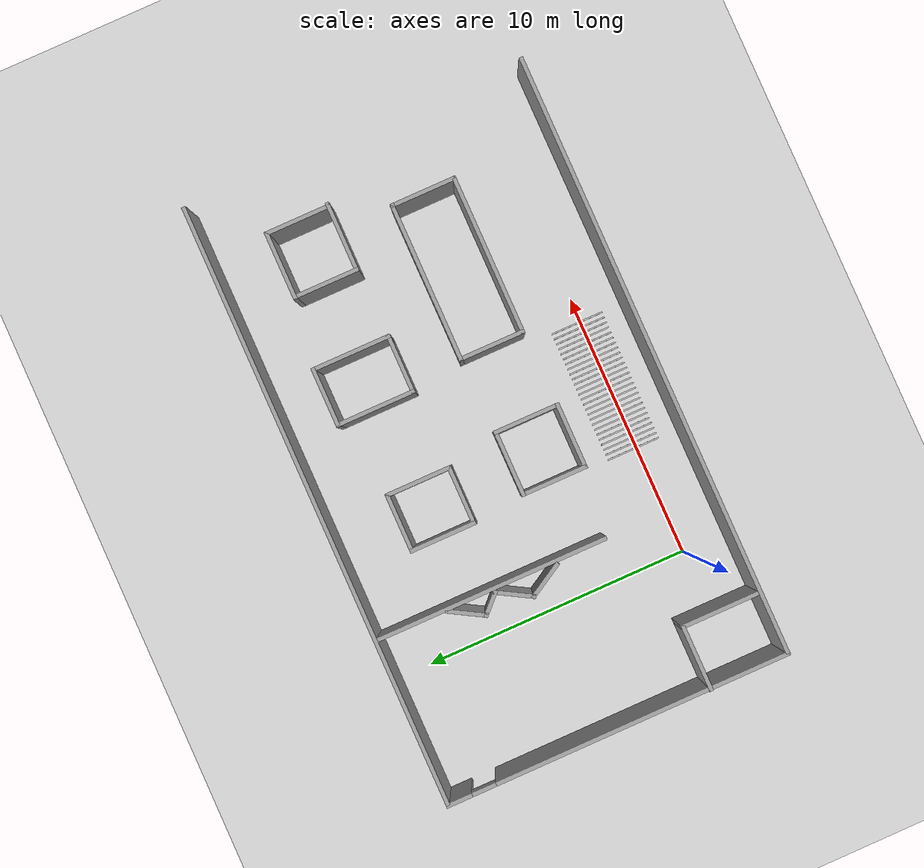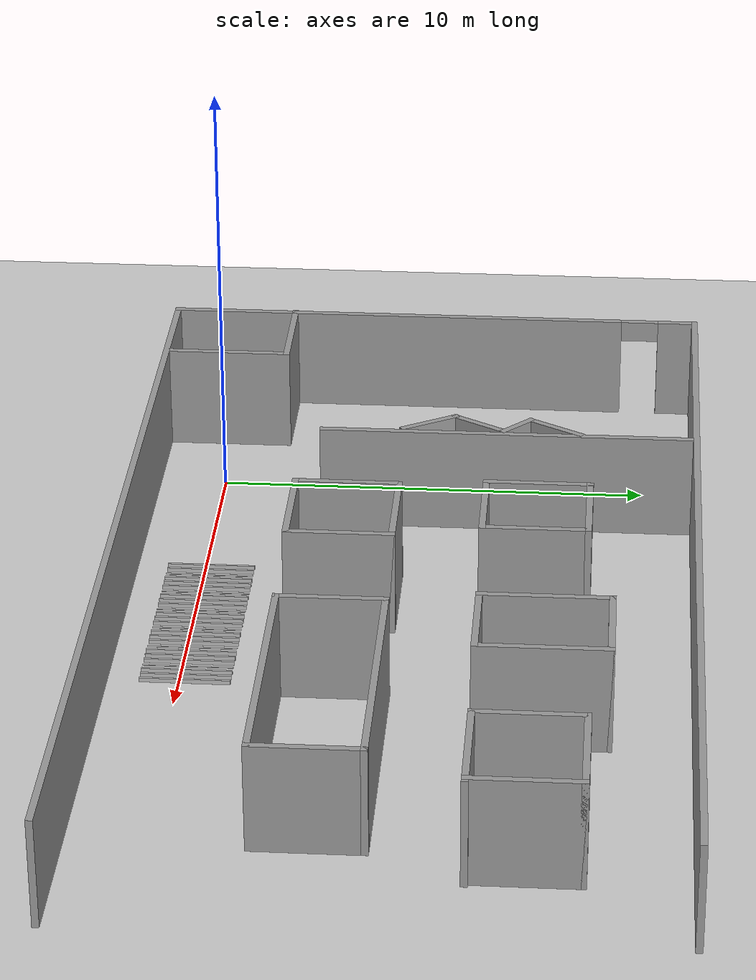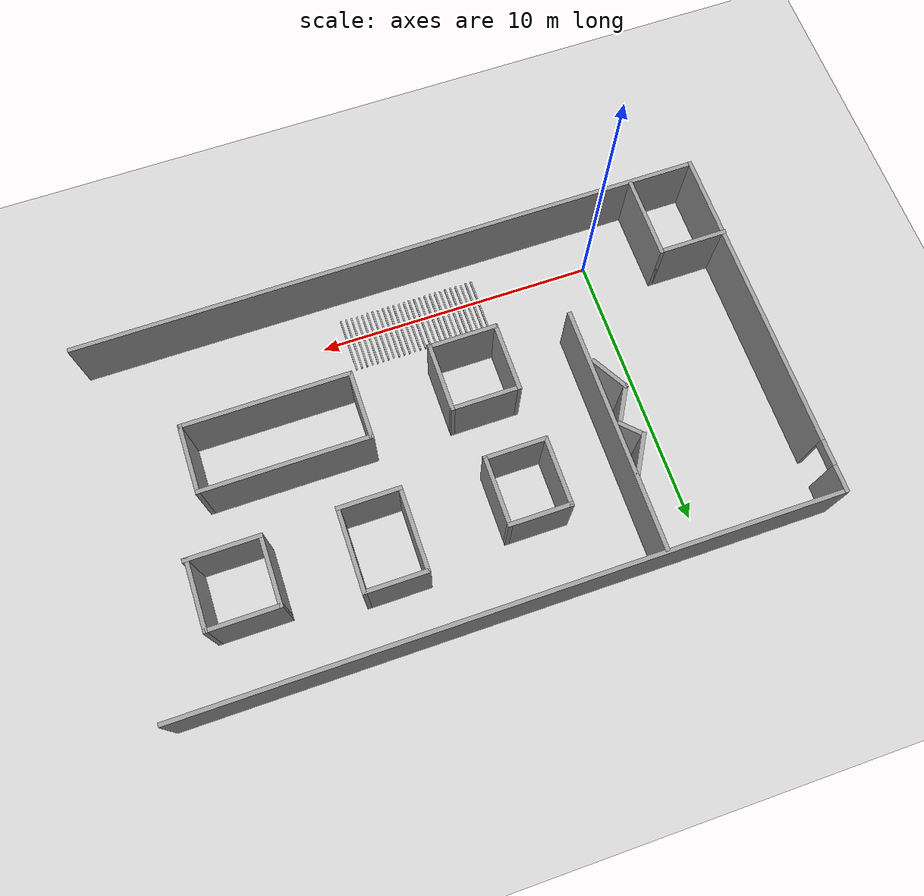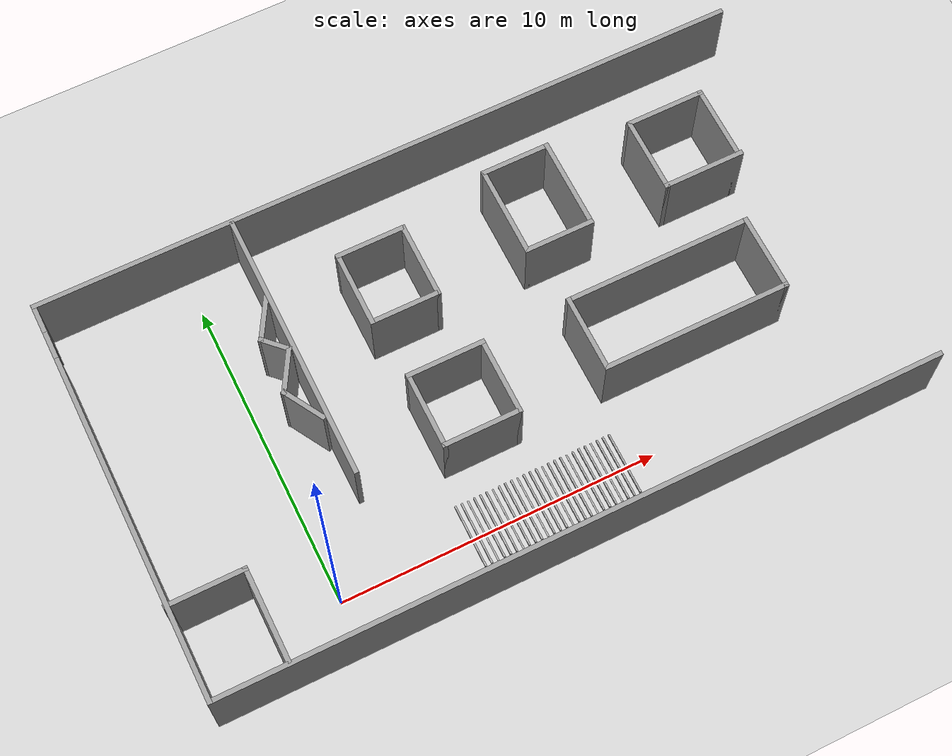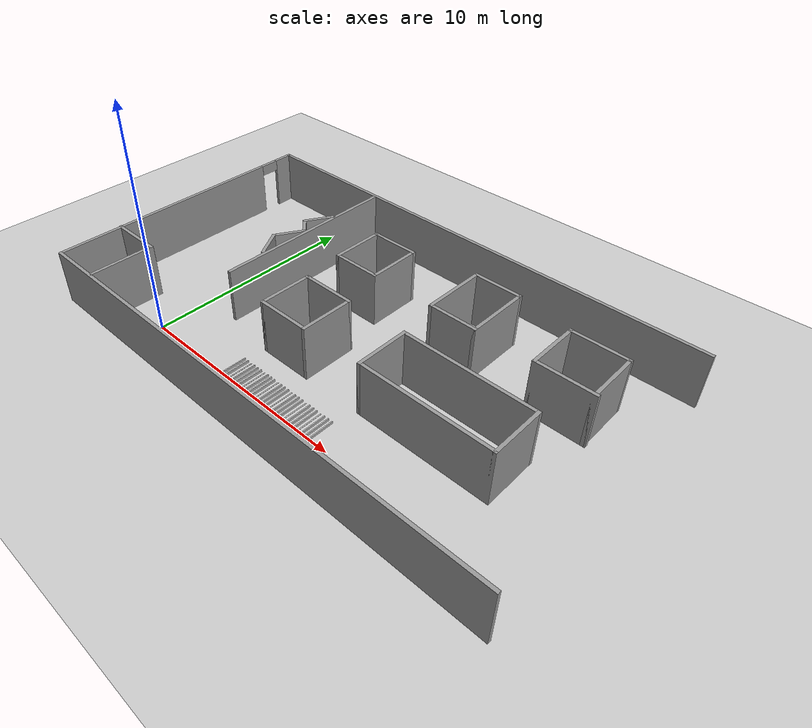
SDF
<sdf version="1.7">
 <world name="default">
  <model name="ground_plane">
   <static>1</static>
   <link name="link">
    <collision name="collision">
     <geometry><plane><normal>0 0 1</normal><size>100 100</size></plane></geometry>
     <surface>
      <contact><collide_bitmask>65535</collide_bitmask></contact>
      <friction><ode><mu>100</mu><mu2>50</mu2></ode></friction>
     </surface>
    </collision>
    <visual name="visual">
     <cast_shadows>0</cast_shadows>
     <geometry><plane><normal>0 0 1</normal><size>100 100</size></plane></geometry>
     <material>
      <script><uri>file://media/materials/scripts/gazebo.material</uri><name>Gazebo/Grey</name></script>
     </material>
    </visual>
   </link>
  </model>
  <model name="office.world">
   <pose>6.86394 4.7921 0 0 -0 0</pose>
   <link name="Wall_11">
    <collision name="Wall_11_Collision">
     <geometry><box><size>22.75 0.15 2.5</size></box></geometry>
     <pose>0 0 1.25 0 -0 0</pose>
    </collision>
    <visual name="Wall_11_Visual">
     <pose>0 0 1.25 0 -0 0</pose>
     <geometry><box><size>22.75 0.15 2.5</size></box></geometry>
     <material>
      <script><uri>file://media/materials/scripts/gazebo.material</uri><name>Gazebo/Grey</name></script>
      <ambient>1 1 1 1</ambient>
     </material>
     <meta><layer>0</layer></meta>
    </visual>
    <pose>0.015161 6.425 0 0 -0 3.14159</pose>
   </link>
   <link name="Wall_15">
    <collision name="Wall_15_Collision">
     <geometry><box><size>8.75 0.15 2.5</size></box></geometry>
     <pose>0 0 1.25 0 -0 0</pose>
    </collision>
    <visual name="Wall_15_Visual">
     <pose>0 0 1.25 0 -0 0</pose>
     <geometry><box><size>8.75 0.15 2.5</size></box></geometry>
     <material>
      <script><uri>file://media/materials/scripts/gazebo.material</uri><name>Gazebo/Grey</name></script>
      <ambient>1 1 1 1</ambient>
     </material>
     <meta><layer>0</layer></meta>
    </visual>
    <pose>-5.08854 2.04563 0 0 -0 -1.5708</pose>
   </link>
   <link name="Wall_17">
    <collision name="Wall_17_Collision">
     <geometry><box><size>2.5 0.15 2.5</size></box></geometry>
     <pose>0 0 1.25 0 -0 0</pose>
    </collision>
    <visual name="Wall_17_Visual">
     <pose>0 0 1.25 0 -0 0</pose>
     <geometry><box><size>2.5 0.15 2.5</size></box></geometry>
     <material>
      <script><uri>file://media/materials/scripts/gazebo.material</uri><name>Gazebo/Grey</name></script>
      <ambient>1 1 1 1</ambient>
     </material>
     <meta><layer>0</layer></meta>
    </visual>
    <pose>-2.75356 2.83565 0 0 -0 -1.5708</pose>
   </link>
   <link name="Wall_18">
    <collision name="Wall_18_Collision">
     <geometry><box><size>2.25 0.15 2.5</size></box></geometry>
     <pose>0 0 1.25 0 -0 0</pose>
    </collision>
    <visual name="Wall_18_Visual">
     <pose>0 0 1.25 0 -0 0</pose>
     <geometry><box><size>2.25 0.15 2.5</size></box></geometry>
     <material>
      <script><uri>file://media/materials/scripts/gazebo.material</uri><name>Gazebo/Grey</name></script>
      <ambient>1 1 1 1</ambient>
     </material>
     <meta><layer>0</layer></meta>
    </visual>
    <pose>-1.70356 1.66065 0 0 -0 0</pose>
   </link>
   <link name="Wall_19">
    <collision name="Wall_19_Collision">
     <geometry><box><size>2.5 0.15 2.5</size></box></geometry>
     <pose>0 0 1.25 0 -0 0</pose>
    </collision>
    <visual name="Wall_19_Visual">
     <pose>0 0 1.25 0 -0 0</pose>
     <geometry><box><size>2.5 0.15 2.5</size></box></geometry>
     <material>
      <script><uri>file://media/materials/scripts/gazebo.material</uri><name>Gazebo/Grey</name></script>
      <ambient>1 1 1 1</ambient>
     </material>
     <meta><layer>0</layer></meta>
    </visual>
    <pose>-0.653558 2.83565 0 0 -0 1.5708</pose>
   </link>
   <link name="Wall_20">
    <collision name="Wall_20_Collision">
     <geometry><box><size>2.25 0.15 2.5</size></box></geometry>
     <pose>0 0 1.25 0 -0 0</pose>
    </collision>
    <visual name="Wall_20_Visual">
     <pose>0 0 1.25 0 -0 0</pose>
     <geometry><box><size>2.25 0.15 2.5</size></box></geometry>
     <material>
      <script><uri>file://media/materials/scripts/gazebo.material</uri><name>Gazebo/Grey</name></script>
      <ambient>1 1 1 1</ambient>
     </material>
     <meta><layer>0</layer></meta>
    </visual>
    <pose>-1.70356 4.01065 0 0 -0 3.14159</pose>
   </link>
   <link name="Wall_22">
    <collision name="Wall_22_Collision">
     <geometry><box><size>3 0.15 2.5</size></box></geometry>
     <pose>0 0 1.25 0 -0 0</pose>
    </collision>
    <visual name="Wall_22_Visual">
     <pose>0 0 1.25 0 -0 0</pose>
     <geometry><box><size>3 0.15 2.5</size></box></geometry>
     <material>
      <script><uri>file://media/materials/scripts/gazebo.material</uri><name>Gazebo/Grey</name></script>
      <ambient>1 1 1 1</ambient>
     </material>
     <meta><layer>0</layer></meta>
    </visual>
    <pose>2.27019 3.1611 0 0 -0 -1.5708</pose>
   </link>
   <link name="Wall_23">
    <collision name="Wall_23_Collision">
     <geometry><box><size>2.25 0.15 2.5</size></box></geometry>
     <pose>0 0 1.25 0 -0 0</pose>
    </collision>
    <visual name="Wall_23_Visual">
     <pose>0 0 1.25 0 -0 0</pose>
     <geometry><box><size>2.25 0.15 2.5</size></box></geometry>
     <material>
      <script><uri>file://media/materials/scripts/gazebo.material</uri><name>Gazebo/Grey</name></script>
      <ambient>1 1 1 1</ambient>
     </material>
     <meta><layer>0</layer></meta>
    </visual>
    <pose>3.32019 1.7361 0 0 -0 0</pose>
   </link>
   <link name="Wall_24">
    <collision name="Wall_24_Collision">
     <geometry><box><size>3 0.15 2.5</size></box></geometry>
     <pose>0 0 1.25 0 -0 0</pose>
    </collision>
    <visual name="Wall_24_Visual">
     <pose>0 0 1.25 0 -0 0</pose>
     <geometry><box><size>3 0.15 2.5</size></box></geometry>
     <material>
      <script><uri>file://media/materials/scripts/gazebo.material</uri><name>Gazebo/Grey</name></script>
      <ambient>1 1 1 1</ambient>
     </material>
     <meta><layer>0</layer></meta>
    </visual>
    <pose>4.37019 3.1611 0 0 -0 1.5708</pose>
   </link>
   <link name="Wall_25">
    <collision name="Wall_25_Collision">
     <geometry><box><size>2.25 0.15 2.5</size></box></geometry>
     <pose>0 0 1.25 0 -0 0</pose>
    </collision>
    <visual name="Wall_25_Visual">
     <pose>0 0 1.25 0 -0 0</pose>
     <geometry><box><size>2.25 0.15 2.5</size></box></geometry>
     <material>
      <script><uri>file://media/materials/scripts/gazebo.material</uri><name>Gazebo/Grey</name></script>
      <ambient>1 1 1 1</ambient>
     </material>
     <meta><layer>0</layer></meta>
    </visual>
    <pose>3.32019 4.5861 0 0 -0 3.14159</pose>
   </link>
   <link name="Wall_27">
    <collision name="Wall_27_Collision">
     <geometry><box><size>2.5 0.15 2.5</size></box></geometry>
     <pose>0 0 1.25 0 -0 0</pose>
    </collision>
    <visual name="Wall_27_Visual">
     <pose>0 0 1.25 0 -0 0</pose>
     <geometry><box><size>2.5 0.15 2.5</size></box></geometry>
     <material>
      <script><uri>file://media/materials/scripts/gazebo.material</uri><name>Gazebo/Grey</name></script>
      <ambient>1 1 1 1</ambient>
     </material>
     <meta><layer>0</layer></meta>
    </visual>
    <pose>6.94016 2.97716 0 0 -0 -1.5708</pose>
   </link>
   <link name="Wall_28">
    <collision name="Wall_28_Collision">
     <geometry><box><size>2.64151 0.15 2.5</size></box></geometry>
     <pose>0 0 1.25 0 -0 0</pose>
    </collision>
    <visual name="Wall_28_Visual">
     <pose>0 0 1.25 0 -0 0</pose>
     <geometry><box><size>2.64151 0.15 2.5</size></box></geometry>
     <material>
      <script><uri>file://media/materials/scripts/gazebo.material</uri><name>Gazebo/Grey</name></script>
      <ambient>1 1 1 1</ambient>
     </material>
     <meta><layer>0</layer></meta>
    </visual>
    <pose>8.18592 1.80216 0 0 -0 0</pose>
   </link>
   <link name="Wall_29">
    <collision name="Wall_29_Collision">
     <geometry><box><size>2.5 0.15 2.5</size></box></geometry>
     <pose>0 0 1.25 0 -0 0</pose>
    </collision>
    <visual name="Wall_29_Visual">
     <pose>0 0 1.25 0 -0 0</pose>
     <geometry><box><size>2.5 0.15 2.5</size></box></geometry>
     <material>
      <script><uri>file://media/materials/scripts/gazebo.material</uri><name>Gazebo/Grey</name></script>
      <ambient>1 1 1 1</ambient>
     </material>
     <meta><layer>0</layer></meta>
    </visual>
    <pose>9.36092 2.97716 0 0 -0 1.5708</pose>
   </link>
   <link name="Wall_30">
    <collision name="Wall_30_Collision">
     <geometry><box><size>2.57076 0.15 2.5</size></box></geometry>
     <pose>0 0 1.25 0 -0 0</pose>
    </collision>
    <visual name="Wall_30_Visual">
     <pose>0 0 1.25 0 -0 0</pose>
     <geometry><box><size>2.57076 0.15 2.5</size></box></geometry>
     <material>
      <script><uri>file://media/materials/scripts/gazebo.material</uri><name>Gazebo/Grey</name></script>
      <ambient>1 1 1 1</ambient>
     </material>
     <meta><layer>0</layer></meta>
    </visual>
    <pose>8.15054 4.15216 0 0 -0 3.14159</pose>
   </link>
   <link name="Wall_32">
    <collision name="Wall_32_Collision">
     <geometry><box><size>2.5 0.15 2.5</size></box></geometry>
     <pose>0 0 1.25 0 -0 0</pose>
    </collision>
    <visual name="Wall_32_Visual">
     <pose>0 0 1.25 0 -0 0</pose>
     <geometry><box><size>2.5 0.15 2.5</size></box></geometry>
     <material>
      <script><uri>file://media/materials/scripts/gazebo.material</uri><name>Gazebo/Grey</name></script>
      <ambient>1 1 1 1</ambient>
     </material>
     <meta><layer>0</layer></meta>
    </visual>
    <pose>-2.54129 -1.48053 0 0 -0 -1.5708</pose>
   </link>
   <link name="Wall_33">
    <collision name="Wall_33_Collision">
     <geometry><box><size>2.5 0.15 2.5</size></box></geometry>
     <pose>0 0 1.25 0 -0 0</pose>
    </collision>
    <visual name="Wall_33_Visual">
     <pose>0 0 1.25 0 -0 0</pose>
     <geometry><box><size>2.5 0.15 2.5</size></box></geometry>
     <material>
      <script><uri>file://media/materials/scripts/gazebo.material</uri><name>Gazebo/Grey</name></script>
      <ambient>1 1 1 1</ambient>
     </material>
     <meta><layer>0</layer></meta>
    </visual>
    <pose>-1.36629 -2.65553 0 0 -0 0</pose>
   </link>
   <link name="Wall_34">
    <collision name="Wall_34_Collision">
     <geometry><box><size>2.5 0.15 2.5</size></box></geometry>
     <pose>0 0 1.25 0 -0 0</pose>
    </collision>
    <visual name="Wall_34_Visual">
     <pose>0 0 1.25 0 -0 0</pose>
     <geometry><box><size>2.5 0.15 2.5</size></box></geometry>
     <material>
      <script><uri>file://media/materials/scripts/gazebo.material</uri><name>Gazebo/Grey</name></script>
      <ambient>1 1 1 1</ambient>
     </material>
     <meta><layer>0</layer></meta>
    </visual>
    <pose>-0.191286 -1.48053 0 0 -0 1.5708</pose>
   </link>
   <link name="Wall_35">
    <collision name="Wall_35_Collision">
     <geometry><box><size>2.5 0.15 2.5</size></box></geometry>
     <pose>0 0 1.25 0 -0 0</pose>
    </collision>
    <visual name="Wall_35_Visual">
     <pose>0 0 1.25 0 -0 0</pose>
     <geometry><box><size>2.5 0.15 2.5</size></box></geometry>
     <material>
      <script><uri>file://media/materials/scripts/gazebo.material</uri><name>Gazebo/Grey</name></script>
      <ambient>1 1 1 1</ambient>
     </material>
     <meta><layer>0</layer></meta>
    </visual>
    <pose>-1.36629 -0.305535 0 0 -0 3.14159</pose>
   </link>
   <link name="Wall_37">
    <collision name="Wall_37_Collision">
     <geometry><box><size>2.5 0.15 2.5</size></box></geometry>
     <pose>0 0 1.25 0 -0 0</pose>
    </collision>
    <visual name="Wall_37_Visual">
     <pose>0 0 1.25 0 -0 0</pose>
     <geometry><box><size>2.5 0.15 2.5</size></box></geometry>
     <material>
      <script><uri>file://media/materials/scripts/gazebo.material</uri><name>Gazebo/Grey</name></script>
      <ambient>1 1 1 1</ambient>
     </material>
     <meta><layer>0</layer></meta>
    </visual>
    <pose>2.62398 -1.40978 0 0 -0 -1.5708</pose>
   </link>
   <link name="Wall_38">
    <collision name="Wall_38_Collision">
     <geometry><box><size>6 0.15 2.5</size></box></geometry>
     <pose>0 0 1.25 0 -0 0</pose>
    </collision>
    <visual name="Wall_38_Visual">
     <pose>0 0 1.25 0 -0 0</pose>
     <geometry><box><size>6 0.15 2.5</size></box></geometry>
     <material>
      <script><uri>file://media/materials/scripts/gazebo.material</uri><name>Gazebo/Grey</name></script>
      <ambient>1 1 1 1</ambient>
     </material>
     <meta><layer>0</layer></meta>
    </visual>
    <pose>5.54898 -2.58478 0 0 -0 0</pose>
   </link>
   <link name="Wall_39">
    <collision name="Wall_39_Collision">
     <geometry><box><size>2.5 0.15 2.5</size></box></geometry>
     <pose>0 0 1.25 0 -0 0</pose>
    </collision>
    <visual name="Wall_39_Visual">
     <pose>0 0 1.25 0 -0 0</pose>
     <geometry><box><size>2.5 0.15 2.5</size></box></geometry>
     <material>
      <script><uri>file://media/materials/scripts/gazebo.material</uri><name>Gazebo/Grey</name></script>
      <ambient>1 1 1 1</ambient>
     </material>
     <meta><layer>0</layer></meta>
    </visual>
    <pose>8.47398 -1.40978 0 0 -0 1.5708</pose>
   </link>
   <link name="Wall_40">
    <collision name="Wall_40_Collision">
     <geometry><box><size>6 0.15 2.5</size></box></geometry>
     <pose>0 0 1.25 0 -0 0</pose>
    </collision>
    <visual name="Wall_40_Visual">
     <pose>0 0 1.25 0 -0 0</pose>
     <geometry><box><size>6 0.15 2.5</size></box></geometry>
     <material>
      <script><uri>file://media/materials/scripts/gazebo.material</uri><name>Gazebo/Grey</name></script>
      <ambient>1 1 1 1</ambient>
     </material>
     <meta><layer>0</layer></meta>
    </visual>
    <pose>5.54898 -0.234777 0 0 -0 3.14159</pose>
   </link>
   <link name="Wall_42">
    <collision name="Wall_42_Collision">
     <geometry><box><size>1.5 0.15 2.5</size></box></geometry>
     <pose>0 0 1.25 0 -0 0</pose>
    </collision>
    <visual name="Wall_42_Visual">
     <pose>0 0 1.25 0 -0 0</pose>
     <geometry><box><size>1.5 0.15 2.5</size></box></geometry>
     <material>
      <script><uri>file://media/materials/scripts/gazebo.material</uri><name>Gazebo/Grey</name></script>
      <ambient>1 1 1 1</ambient>
     </material>
     <meta><layer>0</layer></meta>
    </visual>
    <pose>-5.4968 3.14305 0 0 -0 -2.0944</pose>
   </link>
   <link name="Wall_43">
    <collision name="Wall_43_Collision">
     <geometry><box><size>1 0.15 2.5</size></box></geometry>
     <pose>0 0 1.25 0 -0 0</pose>
    </collision>
    <visual name="Wall_43_Visual">
     <pose>0 0 1.25 0 -0 0</pose>
     <geometry><box><size>1 0.15 2.5</size></box></geometry>
     <material>
      <script><uri>file://media/materials/scripts/gazebo.material</uri><name>Gazebo/Grey</name></script>
      <ambient>1 1 1 1</ambient>
     </material>
     <meta><layer>0</layer></meta>
    </visual>
    <pose>-5.53378 2.25796 0 0 -0 -0.785398</pose>
   </link>
   <link name="Wall_44">
    <collision name="Wall_44_Collision">
     <geometry><box><size>1.5 0.15 2.5</size></box></geometry>
     <pose>0 0 1.25 0 -0 0</pose>
    </collision>
    <visual name="Wall_44_Visual">
     <pose>0 0 1.25 0 -0 0</pose>
     <geometry><box><size>1.5 0.15 2.5</size></box></geometry>
     <material>
      <script><uri>file://media/materials/scripts/gazebo.material</uri><name>Gazebo/Grey</name></script>
      <ambient>1 1 1 1</ambient>
     </material>
     <meta><layer>0</layer></meta>
    </visual>
    <pose>-5.57076 1.37288 0 0 -0 -2.0944</pose>
   </link>
   <link name="Wall_45">
    <collision name="Wall_45_Collision">
     <geometry><box><size>1.5 0.15 2.5</size></box></geometry>
     <pose>0 0 1.25 0 -0 0</pose>
    </collision>
    <visual name="Wall_45_Visual">
     <pose>0 0 1.25 0 -0 0</pose>
     <geometry><box><size>1.5 0.15 2.5</size></box></geometry>
     <material>
      <script><uri>file://media/materials/scripts/gazebo.material</uri><name>Gazebo/Grey</name></script>
      <ambient>1 1 1 1</ambient>
     </material>
     <meta><layer>0</layer></meta>
    </visual>
    <pose>-5.57076 0.203741 0 0 -0 -1.0472</pose>
   </link>
   <link name="Wall_47">
    <collision name="Wall_47_Collision">
     <geometry><box><size>2.5 0.15 2.5</size></box></geometry>
     <pose>0 0 1.25 0 -0 0</pose>
    </collision>
    <visual name="Wall_47_Visual">
     <pose>0 0 1.25 0 -0 0</pose>
     <geometry><box><size>2.5 0.15 2.5</size></box></geometry>
     <material>
      <script><uri>file://media/materials/scripts/gazebo.material</uri><name>Gazebo/Grey</name></script>
      <ambient>1 1 1 1</ambient>
     </material>
     <meta><layer>0</layer></meta>
    </visual>
    <pose>-10.1402 -3.4896 0 0 -0 0</pose>
   </link>
   <link name="Wall_48">
    <collision name="Wall_48_Collision">
     <geometry><box><size>3 0.15 2.5</size></box></geometry>
     <pose>0 0 1.25 0 -0 0</pose>
    </collision>
    <visual name="Wall_48_Visual">
     <pose>0 0 1.25 0 -0 0</pose>
     <geometry><box><size>3 0.15 2.5</size></box></geometry>
     <material>
      <script><uri>file://media/materials/scripts/gazebo.material</uri><name>Gazebo/Grey</name></script>
      <ambient>1 1 1 1</ambient>
     </material>
     <meta><layer>0</layer></meta>
    </visual>
    <pose>-8.96516 -4.9146 0 0 -0 -1.5708</pose>
   </link>
   <link name="Wall_8">
    <pose>-11.2848 -0 0 0 -0 -1.5708</pose>
    <visual name="Wall_8_Visual_0">
     <pose>-6.011 0 1.25 0 -0 0</pose>
     <geometry><box><size>0.977998 0.15 2.5</size></box></geometry>
     <material>
      <script><uri>file://media/materials/scripts/gazebo.material</uri><name>Gazebo/Grey</name></script>
      <ambient>1 1 1 1</ambient>
     </material>
     <meta><layer>0</layer></meta>
    </visual>
    <collision name="Wall_8_Collision_0">
     <geometry><box><size>0.977998 0.15 2.5</size></box></geometry>
     <pose>-6.011 0 1.25 0 -0 0</pose>
    </collision>
    <visual name="Wall_8_Visual_1">
     <pose>0.938999 0 1.25 0 -0 0</pose>
     <geometry><box><size>11.122 0.15 2.5</size></box></geometry>
     <material>
      <script><uri>file://media/materials/scripts/gazebo.material</uri><name>Gazebo/Grey</name></script>
      <ambient>1 1 1 1</ambient>
     </material>
     <meta><layer>0</layer></meta>
    </visual>
    <collision name="Wall_8_Collision_1">
     <geometry><box><size>11.122 0.15 2.5</size></box></geometry>
     <pose>0.938999 0 1.25 0 -0 0</pose>
    </collision>
    <visual name="Wall_8_Visual_2">
     <pose>-5.072 0 2.25 0 -0 0</pose>
     <geometry><box><size>0.9 0.15 0.5</size></box></geometry>
     <material>
      <script><uri>file://media/materials/scripts/gazebo.material</uri><name>Gazebo/Grey</name></script>
      <ambient>1 1 1 1</ambient>
     </material>
     <meta><layer>0</layer></meta>
    </visual>
    <collision name="Wall_8_Collision_2">
     <geometry><box><size>0.9 0.15 0.5</size></box></geometry>
     <pose>-5.072 0 2.25 0 -0 0</pose>
    </collision>
   </link>
   <link name="Wall_9">
    <collision name="Wall_9_Collision">
     <geometry><box><size>22.75 0.15 2.5</size></box></geometry>
     <pose>0 0 1.25 0 -0 0</pose>
    </collision>
    <visual name="Wall_9_Visual">
     <pose>0 0 1.25 0 -0 0</pose>
     <geometry><box><size>22.75 0.15 2.5</size></box></geometry>
     <material>
      <script><uri>file://media/materials/scripts/gazebo.material</uri><name>Gazebo/Grey</name></script>
      <ambient>1 1 1 1</ambient>
     </material>
     <meta><layer>0</layer></meta>
    </visual>
    <pose>0.015161 -6.425 0 0 -0 0</pose>
   </link>
   <static>1</static>
  </model>
  <model name="my_model">
   <link name="bot_wall0">
    <visual name="visual">
     <geometry><box><size>0.05 2 0.1</size></box></geometry>
     <material><script><uri>model://hallway/materials/scripts</uri><name>feature_3</name></script></material>
    </visual>
    <collision name="collision"><geometry><box><size>0.05 2 0.1</size></box></geometry></collision>
    <inertial>
     <inertia><ixx>1</ixx><ixy>0</ixy><ixz>0</ixz><iyy>1</iyy><iyz>0</iyz><izz>1</izz></inertia>
     <mass>1</mass>
    </inertial>
   </link>
   <link name="bot_wall1">
    <pose>0.2 0 0 0 -0 0</pose>
    <visual name="visual">
     <geometry><box><size>0.05 2 0.1</size></box></geometry>
     <material><script><uri>model://hallway/materials/scripts</uri><name>feature_3</name></script></material>
    </visual>
    <collision name="collision"><geometry><box><size>0.05 2 0.1</size></box></geometry></collision>
    <inertial>
     <inertia><ixx>1</ixx><ixy>0</ixy><ixz>0</ixz><iyy>1</iyy><iyz>0</iyz><izz>1</izz></inertia>
     <mass>1</mass>
    </inertial>
   </link>
   <link name="bot_wall2">
    <pose>0.4 0 0 0 -0 0</pose>
    <visual name="visual">
     <geometry><box><size>0.05 2 0.01</size></box></geometry>
     <material><script><uri>model://hallway/materials/scripts</uri><name>feature_3</name></script></material>
    </visual>
    <collision name="collision"><geometry><box><size>0.05 2 0.01</size></box></geometry></collision>
    <inertial>
     <inertia><ixx>1</ixx><ixy>0</ixy><ixz>0</ixz><iyy>1</iyy><iyz>0</iyz><izz>1</izz></inertia>
     <mass>1</mass>
    </inertial>
   </link>
   <link name="bot_wall3">
    <pose>0.6 0 0 0 -0 0</pose>
    <visual name="visual">
     <geometry><box><size>0.05 2 0.1</size></box></geometry>
     <material><script><uri>model://hallway/materials/scripts</uri><name>feature_3</name></script></material>
    </visual>
    <collision name="collision"><geometry><box><size>0.05 2 0.1</size></box></geometry></collision>
    <inertial>
     <inertia><ixx>1</ixx><ixy>0</ixy><ixz>0</ixz><iyy>1</iyy><iyz>0</iyz><izz>1</izz></inertia>
     <mass>1</mass>
    </inertial>
   </link>
   <link name="bot_wall4">
    <pose>0.8 0 0 0 -0 0</pose>
    <visual name="visual">
     <geometry><box><size>0.05 2 0.1</size></box></geometry>
     <material><script><uri>model://hallway/materials/scripts</uri><name>feature_3</name></script></material>
    </visual>
    <collision name="collision"><geometry><box><size>0.05 2 0.1</size></box></geometry></collision>
    <inertial>
     <inertia><ixx>1</ixx><ixy>0</ixy><ixz>0</ixz><iyy>1</iyy><iyz>0</iyz><izz>1</izz></inertia>
     <mass>1</mass>
    </inertial>
   </link>
   <link name="bot_wall5">
    <pose>1 0 0 0 -0 0</pose>
    <visual name="visual">
     <geometry><box><size>0.05 2 0.1</size></box></geometry>
     <material><script><uri>model://hallway/materials/scripts</uri><name>feature_3</name></script></material>
    </visual>
    <collision name="collision"><geometry><box><size>0.05 2 0.1</size></box></geometry></collision>
    <inertial>
     <inertia><ixx>1</ixx><ixy>0</ixy><ixz>0</ixz><iyy>1</iyy><iyz>0</iyz><izz>1</izz></inertia>
     <mass>1</mass>
    </inertial>
   </link>
   <link name="bot_wall6">
    <pose>1.2 0 0 0 -0 0</pose>
    <visual name="visual">
     <geometry><box><size>0.05 2 0.01</size></box></geometry>
     <material><script><uri>model://hallway/materials/scripts</uri><name>feature_3</name></script></material>
    </visual>
    <collision name="collision"><geometry><box><size>0.05 2 0.01</size></box></geometry></collision>
    <inertial>
     <inertia><ixx>1</ixx><ixy>0</ixy><ixz>0</ixz><iyy>1</iyy><iyz>0</iyz><izz>1</izz></inertia>
     <mass>1</mass>
    </inertial>
   </link>
   <link name="bot_wall7">
    <pose>1.4 0 0 0 -0 0</pose>
    <visual name="visual">
     <geometry><box><size>0.05 2 0.1</size></box></geometry>
     <material><script><uri>model://hallway/materials/scripts</uri><name>feature_3</name></script></material>
    </visual>
    <collision name="collision"><geometry><box><size>0.05 2 0.1</size></box></geometry></collision>
    <inertial>
     <inertia><ixx>1</ixx><ixy>0</ixy><ixz>0</ixz><iyy>1</iyy><iyz>0</iyz><izz>1</izz></inertia>
     <mass>1</mass>
    </inertial>
   </link>
   <link name="bot_wall8">
    <pose>1.6 0 0 0 -0 0</pose>
    <visual name="visual">
     <geometry><box><size>0.05 2 0.1</size></box></geometry>
     <material><script><uri>model://hallway/materials/scripts</uri><name>feature_3</name></script></material>
    </visual>
    <collision name="collision"><geometry><box><size>0.05 2 0.1</size></box></geometry></collision>
    <inertial>
     <inertia><ixx>1</ixx><ixy>0</ixy><ixz>0</ixz><iyy>1</iyy><iyz>0</iyz><izz>1</izz></inertia>
     <mass>1</mass>
    </inertial>
   </link>
   <link name="bot_wall9">
    <pose>1.8 0 0 0 -0 0</pose>
    <visual name="visual">
     <geometry><box><size>0.05 2 0.1</size></box></geometry>
     <material><script><uri>model://hallway/materials/scripts</uri><name>feature_3</name></script></material>
    </visual>
    <collision name="collision"><geometry><box><size>0.05 2 0.1</size></box></geometry></collision>
    <inertial>
     <inertia><ixx>1</ixx><ixy>0</ixy><ixz>0</ixz><iyy>1</iyy><iyz>0</iyz><izz>1</izz></inertia>
     <mass>1</mass>
    </inertial>
   </link>
   <link name="bot_wall10">
    <pose>2 0 0 0 -0 0</pose>
    <visual name="visual">
     <geometry><box><size>0.05 2 0.01</size></box></geometry>
     <material><script><uri>model://hallway/materials/scripts</uri><name>feature_3</name></script></material>
    </visual>
    <collision name="collision"><geometry><box><size>0.05 2 0.01</size></box></geometry></collision>
    <inertial>
     <inertia><ixx>1</ixx><ixy>0</ixy><ixz>0</ixz><iyy>1</iyy><iyz>0</iyz><izz>1</izz></inertia>
     <mass>1</mass>
    </inertial>
   </link>
   <link name="bot_wall11">
    <pose>2.2 0 0 0 -0 0</pose>
    <visual name="visual">
     <geometry><box><size>0.05 2 0.1</size></box></geometry>
     <material><script><uri>model://hallway/materials/scripts</uri><name>feature_3</name></script></material>
    </visual>
    <collision name="collision"><geometry><box><size>0.05 2 0.1</size></box></geometry></collision>
    <inertial>
     <inertia><ixx>1</ixx><ixy>0</ixy><ixz>0</ixz><iyy>1</iyy><iyz>0</iyz><izz>1</izz></inertia>
     <mass>1</mass>
    </inertial>
   </link>
   <link name="bot_wall12">
    <pose>2.4 0 0 0 -0 0</pose>
    <visual name="visual">
     <geometry><box><size>0.05 2 0.1</size></box></geometry>
     <material><script><uri>model://hallway/materials/scripts</uri><name>feature_3</name></script></material>
    </visual>
    <collision name="collision"><geometry><box><size>0.05 2 0.1</size></box></geometry></collision>
    <inertial>
     <inertia><ixx>1</ixx><ixy>0</ixy><ixz>0</ixz><iyy>1</iyy><iyz>0</iyz><izz>1</izz></inertia>
     <mass>1</mass>
    </inertial>
   </link>
   <link name="bot_wall13">
    <pose>2.6 0 0 0 -0 0</pose>
    <visual name="visual">
     <geometry><box><size>0.05 2 0.1</size></box></geometry>
     <material><script><uri>model://hallway/materials/scripts</uri><name>feature_3</name></script></material>
    </visual>
    <collision name="collision"><geometry><box><size>0.05 2 0.1</size></box></geometry></collision>
    <inertial>
     <inertia><ixx>1</ixx><ixy>0</ixy><ixz>0</ixz><iyy>1</iyy><iyz>0</iyz><izz>1</izz></inertia>
     <mass>1</mass>
    </inertial>
   </link>
   <link name="bot_wall14">
    <pose>2.8 0 0 0 -0 0</pose>
    <visual name="visual">
     <geometry><box><size>0.05 2 0.01</size></box></geometry>
     <material><script><uri>model://hallway/materials/scripts</uri><name>feature_3</name></script></material>
    </visual>
    <collision name="collision"><geometry><box><size>0.05 2 0.01</size></box></geometry></collision>
    <inertial>
     <inertia><ixx>1</ixx><ixy>0</ixy><ixz>0</ixz><iyy>1</iyy><iyz>0</iyz><izz>1</izz></inertia>
     <mass>1</mass>
    </inertial>
   </link>
   <link name="bot_wall15">
    <pose>3 0 0 0 -0 0</pose>
    <visual name="visual">
     <geometry><box><size>0.05 2 0.1</size></box></geometry>
     <material><script><uri>model://hallway/materials/scripts</uri><name>feature_3</name></script></material>
    </visual>
    <collision name="collision"><geometry><box><size>0.05 2 0.1</size></box></geometry></collision>
    <inertial>
     <inertia><ixx>1</ixx><ixy>0</ixy><ixz>0</ixz><iyy>1</iyy><iyz>0</iyz><izz>1</izz></inertia>
     <mass>1</mass>
    </inertial>
   </link>
   <link name="bot_wall16">
    <pose>3.2 0 0 0 -0 0</pose>
    <visual name="visual">
     <geometry><box><size>0.05 2 0.1</size></box></geometry>
     <material><script><uri>model://hallway/materials/scripts</uri><name>feature_3</name></script></material>
    </visual>
    <collision name="collision"><geometry><box><size>0.05 2 0.1</size></box></geometry></collision>
    <inertial>
     <inertia><ixx>1</ixx><ixy>0</ixy><ixz>0</ixz><iyy>1</iyy><iyz>0</iyz><izz>1</izz></inertia>
     <mass>1</mass>
    </inertial>
   </link>
   <link name="bot_wall17">
    <pose>3.4 0 0 0 -0 0</pose>
    <visual name="visual">
     <geometry><box><size>0.05 2 0.1</size></box></geometry>
     <material><script><uri>model://hallway/materials/scripts</uri><name>feature_3</name></script></material>
    </visual>
    <collision name="collision"><geometry><box><size>0.05 2 0.1</size></box></geometry></collision>
    <inertial>
     <inertia><ixx>1</ixx><ixy>0</ixy><ixz>0</ixz><iyy>1</iyy><iyz>0</iyz><izz>1</izz></inertia>
     <mass>1</mass>
    </inertial>
   </link>
   <link name="bot_wall18">
    <pose>3.6 0 0 0 -0 0</pose>
    <visual name="visual">
     <geometry><box><size>0.05 2 0.01</size></box></geometry>
     <material><script><uri>model://hallway/materials/scripts</uri><name>feature_3</name></script></material>
    </visual>
    <collision name="collision"><geometry><box><size>0.05 2 0.01</size></box></geometry></collision>
    <inertial>
     <inertia><ixx>1</ixx><ixy>0</ixy><ixz>0</ixz><iyy>1</iyy><iyz>0</iyz><izz>1</izz></inertia>
     <mass>1</mass>
    </inertial>
   </link>
   <link name="bot_wall19">
    <pose>3.8 0 0 0 -0 0</pose>
    <visual name="visual">
     <geometry><box><size>0.05 2 0.1</size></box></geometry>
     <material><script><uri>model://hallway/materials/scripts</uri><name>feature_3</name></script></material>
    </visual>
    <collision name="collision"><geometry><box><size>0.05 2 0.1</size></box></geometry></collision>
    <inertial>
     <inertia><ixx>1</ixx><ixy>0</ixy><ixz>0</ixz><iyy>1</iyy><iyz>0</iyz><izz>1</izz></inertia>
     <mass>1</mass>
    </inertial>
   </link>
   <link name="bot_wall20">
    <pose>4 0 0 0 -0 0</pose>
    <visual name="visual">
     <geometry><box><size>0.05 2 0.1</size></box></geometry>
     <material><script><uri>model://hallway/materials/scripts</uri><name>feature_3</name></script></material>
    </visual>
    <collision name="collision"><geometry><box><size>0.05 2 0.1</size></box></geometry></collision>
    <inertial>
     <inertia><ixx>1</ixx><ixy>0</ixy><ixz>0</ixz><iyy>1</iyy><iyz>0</iyz><izz>1</izz></inertia>
     <mass>1</mass>
    </inertial>
   </link>
   <link name="bot_wall21">
    <pose>4.2 0 0 0 -0 0</pose>
    <visual name="visual">
     <geometry><box><size>0.05 2 0.1</size></box></geometry>
     <material><script><uri>model://hallway/materials/scripts</uri><name>feature_3</name></script></material>
    </visual>
    <collision name="collision"><geometry><box><size>0.05 2 0.1</size></box></geometry></collision>
    <inertial>
     <inertia><ixx>1</ixx><ixy>0</ixy><ixz>0</ixz><iyy>1</iyy><iyz>0</iyz><izz>1</izz></inertia>
     <mass>1</mass>
    </inertial>
   </link>
   <link name="bot_wall22">
    <pose>4.4 0 0 0 -0 0</pose>
    <visual name="visual">
     <geometry><box><size>0.05 2 0.01</size></box></geometry>
     <material><script><uri>model://hallway/materials/scripts</uri><name>feature_3</name></script></material>
    </visual>
    <collision name="collision"><geometry><box><size>0.05 2 0.01</size></box></geometry></collision>
    <inertial>
     <inertia><ixx>1</ixx><ixy>0</ixy><ixz>0</ixz><iyy>1</iyy><iyz>0</iyz><izz>1</izz></inertia>
     <mass>1</mass>
    </inertial>
   </link>
   <link name="bot_wall23">
    <pose>4.6 0 0 0 -0 0</pose>
    <visual name="visual">
     <geometry><box><size>0.05 2 0.1</size></box></geometry>
     <material><script><uri>model://hallway/materials/scripts</uri><name>feature_3</name></script></material>
    </visual>
    <collision name="collision"><geometry><box><size>0.05 2 0.1</size></box></geometry></collision>
    <inertial>
     <inertia><ixx>1</ixx><ixy>0</ixy><ixz>0</ixz><iyy>1</iyy><iyz>0</iyz><izz>1</izz></inertia>
     <mass>1</mass>
    </inertial>
   </link>
   <link name="bot_wall24">
    <pose>4.8 0 0 0 -0 0</pose>
    <visual name="visual">
     <geometry><box><size>0.05 2 0.1</size></box></geometry>
     <material><script><uri>model://hallway/materials/scripts</uri><name>feature_3</name></script></material>
    </visual>
    <collision name="collision"><geometry><box><size>0.05 2 0.1</size></box></geometry></collision>
    <inertial>
     <inertia><ixx>1</ixx><ixy>0</ixy><ixz>0</ixz><iyy>1</iyy><iyz>0</iyz><izz>1</izz></inertia>
     <mass>1</mass>
    </inertial>
   </link>
   <link name="bot_wall25">
    <pose>5 0 0 0 -0 0</pose>
    <visual name="visual">
     <geometry><box><size>0.05 2 0.1</size></box></geometry>
     <material><script><uri>model://hallway/materials/scripts</uri><name>feature_3</name></script></material>
    </visual>
    <collision name="collision"><geometry><box><size>0.05 2 0.1</size></box></geometry></collision>
    <inertial>
     <inertia><ixx>1</ixx><ixy>0</ixy><ixz>0</ixz><iyy>1</iyy><iyz>0</iyz><izz>1</izz></inertia>
     <mass>1</mass>
    </inertial>
   </link>
   <joint name="joint0" type="fixed"><parent>bot_wall0</parent><child>bot_wall1</child></joint>
   <joint name="joint1" type="fixed"><parent>bot_wall1</parent><child>bot_wall2</child></joint>
   <joint name="joint2" type="fixed"><parent>bot_wall2</parent><child>bot_wall3</child></joint>
   <joint name="joint3" type="fixed"><parent>bot_wall3</parent><child>bot_wall4</child></joint>
   <joint name="joint4" type="fixed"><parent>bot_wall4</parent><child>bot_wall5</child></joint>
   <joint name="joint5" type="fixed"><parent>bot_wall5</parent><child>bot_wall6</child></joint>
   <joint name="joint6" type="fixed"><parent>bot_wall6</parent><child>bot_wall7</child></joint>
   <joint name="joint7" type="fixed"><parent>bot_wall7</parent><child>bot_wall8</child></joint>
   <joint name="joint8" type="fixed"><parent>bot_wall8</parent><child>bot_wall9</child></joint>
   <joint name="joint9" type="fixed"><parent>bot_wall9</parent><child>bot_wall10</child></joint>
   <joint name="joint10" type="fixed"><parent>bot_wall10</parent><child>bot_wall11</child></joint>
   <joint name="joint11" type="fixed"><parent>bot_wall11</parent><child>bot_wall12</child></joint>
   <joint name="joint12" type="fixed"><parent>bot_wall12</parent><child>bot_wall13</child></joint>
   <joint name="joint13" type="fixed"><parent>bot_wall13</parent><child>bot_wall14</child></joint>
   <joint name="joint14" type="fixed"><parent>bot_wall14</parent><child>bot_wall15</child></joint>
   <joint name="joint15" type="fixed"><parent>bot_wall15</parent><child>bot_wall16</child></joint>
   <joint name="joint16" type="fixed"><parent>bot_wall16</parent><child>bot_wall17</child></joint>
   <joint name="joint17" type="fixed"><parent>bot_wall17</parent><child>bot_wall18</child></joint>
   <joint name="joint18" type="fixed"><parent>bot_wall18</parent><child>bot_wall19</child></joint>
   <joint name="joint19" type="fixed"><parent>bot_wall19</parent><child>bot_wall20</child></joint>
   <joint name="joint20" type="fixed"><parent>bot_wall20</parent><child>bot_wall21</child></joint>
   <joint name="joint21" type="fixed"><parent>bot_wall21</parent><child>bot_wall22</child></joint>
   <joint name="joint22" type="fixed"><parent>bot_wall22</parent><child>bot_wall23</child></joint>
   <joint name="joint23" type="fixed"><parent>bot_wall23</parent><child>bot_wall24</child></joint>
   <joint name="joint24" type="fixed"><parent>bot_wall24</parent><child>bot_wall25</child></joint>
   <pose>4.13106 0.137753 0.049995 -1e-06 -1e-06 8.8e-05</pose>
  </model>
 </world>
</sdf>
